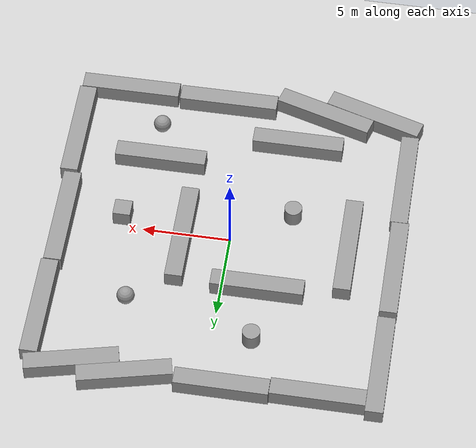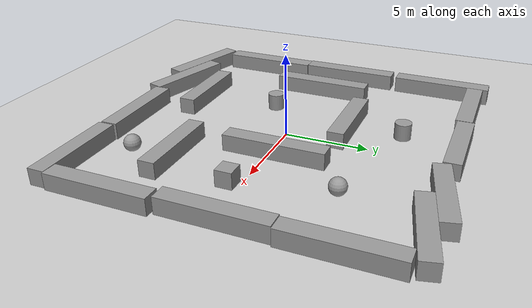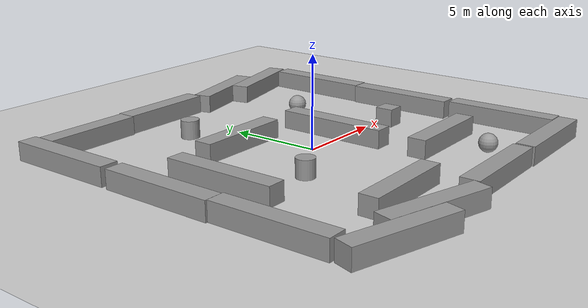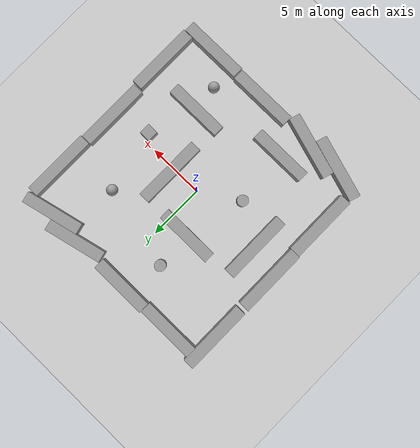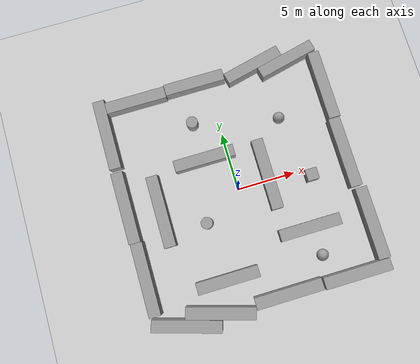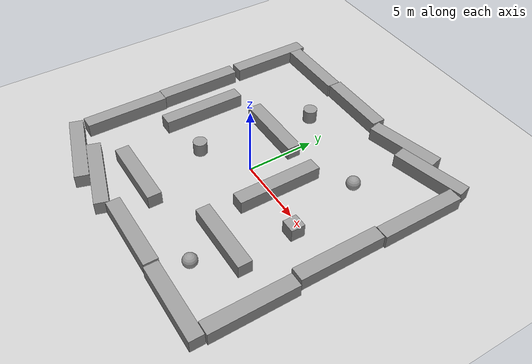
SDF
<sdf version="1.6">
 <world name="default">
  <light name="sun" type="directional">
   <pose>0 0 10 0 -0 0</pose>
   <diffuse>0.8 0.8 0.8 1</diffuse>
   <specular>0.2 0.2 0.2 1</specular>
   <attenuation>
    <range>1000</range>
    <constant>0.9</constant>
    <linear>0.01</linear>
    <quadratic>0.001</quadratic>
   </attenuation>
   <direction>-0.5 0.1 -0.9</direction>
  </light>
  <model name="ground_plane">
   <static>1</static>
   <link name="link">
    <collision name="collision">
     <geometry><plane><normal>0 0 1</normal><size>100 100</size></plane></geometry>
     <surface><friction><ode><mu>100</mu><mu2>50</mu2></ode></friction></surface>
    </collision>
    <visual name="visual">
     <cast_shadows>0</cast_shadows>
     <geometry><plane><normal>0 0 1</normal><size>100 100</size></plane></geometry>
     <material>
      <script><uri>file://media/materials/scripts/gazebo.material</uri><name>Gazebo/Grey</name></script>
     </material>
    </visual>
   </link>
  </model>
  <gravity>0 0 -9.8</gravity>
  <magnetic_field>6e-06 2.3e-05 -4.2e-05</magnetic_field>
  <atmosphere type="adiabatic"/>
  <physics name="default_physics" default="0" type="ode">
   <max_step_size>0.001</max_step_size>
   <real_time_factor>1</real_time_factor>
   <real_time_update_rate>1000</real_time_update_rate>
  </physics>
  <scene><ambient>0.4 0.4 0.4 1</ambient><background>0.7 0.7 0.7 1</background><shadows>1</shadows></scene>
  <spherical_coordinates>
   <surface_model>EARTH_WGS84</surface_model>
   <latitude_deg>0</latitude_deg>
   <longitude_deg>0</longitude_deg>
   <elevation>0</elevation>
   <heading_deg>0</heading_deg>
  </spherical_coordinates>
  <model name="unit_box">
   <pose>-2.04113 3.23235 0.5 1e-06 -0 6.7e-05</pose>
   <link name="link">
    <inertial>
     <mass>1</mass>
     <inertia>
      <ixx>0.166667</ixx>
      <ixy>0</ixy>
      <ixz>0</ixz>
      <iyy>0.166667</iyy>
      <iyz>0</iyz>
      <izz>0.166667</izz>
     </inertia>
    </inertial>
    <collision name="collision"><geometry><box><size>5.23122 1 1</size></box></geometry></collision>
    <visual name="visual">
     <geometry><box><size>5.23122 1 1</size></box></geometry>
     <material>
      <script><name>Gazebo/Grey</name><uri>file://media/materials/scripts/gazebo.material</uri></script>
     </material>
    </visual>
   </link>
  </model>
  <model name="unit_box_0">
   <pose>2.65874 0.450974 0.494749 0.001718 -0 -0.000135</pose>
   <link name="link">
    <inertial>
     <mass>1</mass>
     <inertia>
      <ixx>0.166667</ixx>
      <ixy>0</ixy>
      <ixz>0</ixz>
      <iyy>0.166667</iyy>
      <iyz>0</iyz>
      <izz>0.166667</izz>
     </inertia>
    </inertial>
    <collision name="collision"><geometry><box><size>1 6.11687 1</size></box></geometry></collision>
    <visual name="visual">
     <geometry><box><size>1 6.11687 1</size></box></geometry>
     <material>
      <script><name>Gazebo/Grey</name><uri>file://media/materials/scripts/gazebo.material</uri></script>
     </material>
    </visual>
   </link>
  </model>
  <model name="unit_box_0_clone">
   <pose>-6.71949 -0.050094 0.494749 -0.001718 0 -0.000135</pose>
   <link name="link">
    <inertial>
     <mass>1</mass>
     <inertia>
      <ixx>0.166667</ixx>
      <ixy>0</ixy>
      <ixz>0</ixz>
      <iyy>0.166667</iyy>
      <iyz>0</iyz>
      <izz>0.166667</izz>
     </inertia>
    </inertial>
    <collision name="collision"><geometry><box><size>1 6.11688 1</size></box></geometry></collision>
    <visual name="visual">
     <geometry><box><size>1 6.11688 1</size></box></geometry>
     <material>
      <script><name>Gazebo/Grey</name><uri>file://media/materials/scripts/gazebo.material</uri></script>
     </material>
    </visual>
   </link>
  </model>
  <model name="unit_box_clone">
   <pose>4.75092 -4.82907 0.497393 0 -0.000997 -2.7e-05</pose>
   <link name="link">
    <inertial>
     <mass>1</mass>
     <inertia>
      <ixx>0.166667</ixx>
      <ixy>0</ixy>
      <ixz>0</ixz>
      <iyy>0.166667</iyy>
      <iyz>0</iyz>
      <izz>0.166667</izz>
     </inertia>
    </inertial>
    <collision name="collision"><geometry><box><size>5.23122 1 1</size></box></geometry></collision>
    <visual name="visual">
     <geometry><box><size>5.23122 1 1</size></box></geometry>
     <material>
      <script><name>Gazebo/Grey</name><uri>file://media/materials/scripts/gazebo.material</uri></script>
     </material>
    </visual>
   </link>
  </model>
  <model name="unit_box_clone_0">
   <pose>-2.94831 -6.98087 0.497393 0 -0.000997 -2.7e-05</pose>
   <link name="link">
    <inertial>
     <mass>1</mass>
     <inertia>
      <ixx>0.166667</ixx>
      <ixy>0</ixy>
      <ixz>0</ixz>
      <iyy>0.166667</iyy>
      <iyz>0</iyz>
      <izz>0.166667</izz>
     </inertia>
    </inertial>
    <collision name="collision"><geometry><box><size>5.23122 1 1</size></box></geometry></collision>
    <visual name="visual">
     <geometry><box><size>5.23122 1 1</size></box></geometry>
     <material>
      <script><name>Gazebo/Grey</name><uri>file://media/materials/scripts/gazebo.material</uri></script>
     </material>
    </visual>
   </link>
  </model>
  <model name="unit_box_clone_1">
   <pose>7.3075 -9.52002 0.496165 -0 0.001346 -7.1e-05</pose>
   <link name="link">
    <inertial>
     <mass>1</mass>
     <inertia>
      <ixx>0.166667</ixx>
      <ixy>0</ixy>
      <ixz>0</ixz>
      <iyy>0.166667</iyy>
      <iyz>0</iyz>
      <izz>0.166667</izz>
     </inertia>
    </inertial>
    <collision name="collision"><geometry><box><size>5.69951 1 1</size></box></geometry></collision>
    <visual name="visual">
     <geometry><box><size>5.69951 1 1</size></box></geometry>
     <material>
      <script><name>Gazebo/Grey</name><uri>file://media/materials/scripts/gazebo.material</uri></script>
     </material>
    </visual>
   </link>
  </model>
  <model name="unit_box_clone_1_clone">
   <pose>1.48768 -9.44384 0.496165 0 0.001346 7.6e-05</pose>
   <link name="link">
    <inertial>
     <mass>1</mass>
     <inertia>
      <ixx>0.166667</ixx>
      <ixy>0</ixy>
      <ixz>0</ixz>
      <iyy>0.166667</iyy>
      <iyz>0</iyz>
      <izz>0.166667</izz>
     </inertia>
    </inertial>
    <collision name="collision"><geometry><box><size>5.69949 1 1</size></box></geometry></collision>
    <visual name="visual">
     <geometry><box><size>5.69949 1 1</size></box></geometry>
     <material>
      <script><name>Gazebo/Grey</name><uri>file://media/materials/scripts/gazebo.material</uri></script>
     </material>
    </visual>
   </link>
  </model>
  <model name="unit_box_clone_1_clone_0">
   <pose>-4.23588 -9.33492 0.499979 0 -7e-06 -0.289893</pose>
   <link name="link">
    <inertial>
     <mass>1</mass>
     <inertia>
      <ixx>0.166667</ixx>
      <ixy>0</ixy>
      <ixz>0</ixz>
      <iyy>0.166667</iyy>
      <iyz>0</iyz>
      <izz>0.166667</izz>
     </inertia>
    </inertial>
    <collision name="collision"><geometry><box><size>5.69949 1 1</size></box></geometry></collision>
    <visual name="visual">
     <geometry><box><size>5.69949 1 1</size></box></geometry>
     <material>
      <script><name>Gazebo/Grey</name><uri>file://media/materials/scripts/gazebo.material</uri></script>
     </material>
    </visual>
   </link>
  </model>
  <model name="unit_box_clone_1_clone_1">
   <pose>-7.13158 -9.51555 0.499987 2e-06 -5e-06 -0.296344</pose>
   <link name="link">
    <inertial>
     <mass>1</mass>
     <inertia>
      <ixx>0.166667</ixx>
      <ixy>0</ixy>
      <ixz>0</ixz>
      <iyy>0.166667</iyy>
      <iyz>0</iyz>
      <izz>0.166667</izz>
     </inertia>
    </inertial>
    <collision name="collision"><geometry><box><size>5.69949 1 1</size></box></geometry></collision>
    <visual name="visual">
     <geometry><box><size>5.69949 1 1</size></box></geometry>
     <material>
      <script><name>Gazebo/Grey</name><uri>file://media/materials/scripts/gazebo.material</uri></script>
     </material>
    </visual>
   </link>
  </model>
  <model name="unit_box_0_clone_clone">
   <pose>-9.34697 -5.04524 0.494749 -0.001718 -0 0.000135</pose>
   <link name="link">
    <inertial>
     <mass>1</mass>
     <inertia>
      <ixx>0.166667</ixx>
      <ixy>0</ixy>
      <ixz>0</ixz>
      <iyy>0.166667</iyy>
      <iyz>0</iyz>
      <izz>0.166667</izz>
     </inertia>
    </inertial>
    <collision name="collision"><geometry><box><size>1 6.11688 1</size></box></geometry></collision>
    <visual name="visual">
     <geometry><box><size>1 6.11688 1</size></box></geometry>
     <material>
      <script><name>Gazebo/Grey</name><uri>file://media/materials/scripts/gazebo.material</uri></script>
     </material>
    </visual>
   </link>
  </model>
  <model name="unit_box_0_clone_clone_0">
   <pose>-9.4407 1.07916 0.494749 0.001718 0 0.000135</pose>
   <link name="link">
    <inertial>
     <mass>1</mass>
     <inertia>
      <ixx>0.166667</ixx>
      <ixy>0</ixy>
      <ixz>0</ixz>
      <iyy>0.166667</iyy>
      <iyz>0</iyz>
      <izz>0.166667</izz>
     </inertia>
    </inertial>
    <collision name="collision"><geometry><box><size>1 6.11688 1</size></box></geometry></collision>
    <visual name="visual">
     <geometry><box><size>1 6.11688 1</size></box></geometry>
     <material>
      <script><name>Gazebo/Grey</name><uri>file://media/materials/scripts/gazebo.material</uri></script>
     </material>
    </visual>
   </link>
  </model>
  <model name="unit_box_0_clone_clone_1">
   <pose>-9.42017 7.54255 0.494749 -0.001718 -0 0.000135</pose>
   <link name="link">
    <inertial>
     <mass>1</mass>
     <inertia>
      <ixx>0.166667</ixx>
      <ixy>0</ixy>
      <ixz>0</ixz>
      <iyy>0.166667</iyy>
      <iyz>0</iyz>
      <izz>0.166667</izz>
     </inertia>
    </inertial>
    <collision name="collision"><geometry><box><size>1 6.11688 1</size></box></geometry></collision>
    <visual name="visual">
     <geometry><box><size>1 6.11688 1</size></box></geometry>
     <material>
      <script><name>Gazebo/Grey</name><uri>file://media/materials/scripts/gazebo.material</uri></script>
     </material>
    </visual>
   </link>
  </model>
  <model name="unit_box_clone_2">
   <pose>-6.30401 9.78097 0.5 1e-06 -0 -0.001022</pose>
   <link name="link">
    <inertial>
     <mass>1</mass>
     <inertia>
      <ixx>0.166667</ixx>
      <ixy>0</ixy>
      <ixz>0</ixz>
      <iyy>0.166667</iyy>
      <iyz>0</iyz>
      <izz>0.166667</izz>
     </inertia>
    </inertial>
    <collision name="collision"><geometry><box><size>5.23122 1 1</size></box></geometry></collision>
    <visual name="visual">
     <geometry><box><size>5.23122 1 1</size></box></geometry>
     <material>
      <script><name>Gazebo/Grey</name><uri>file://media/materials/scripts/gazebo.material</uri></script>
     </material>
    </visual>
   </link>
  </model>
  <model name="unit_box_clone_3">
   <pose>-1.05502 9.89958 0.497393 0 -0.000997 -2.2e-05</pose>
   <link name="link">
    <inertial>
     <mass>1</mass>
     <inertia>
      <ixx>0.166667</ixx>
      <ixy>0</ixy>
      <ixz>0</ixz>
      <iyy>0.166667</iyy>
      <iyz>0</iyz>
      <izz>0.166667</izz>
     </inertia>
    </inertial>
    <collision name="collision"><geometry><box><size>5.23122 1 1</size></box></geometry></collision>
    <visual name="visual">
     <geometry><box><size>5.23122 1 1</size></box></geometry>
     <material>
      <script><name>Gazebo/Grey</name><uri>file://media/materials/scripts/gazebo.material</uri></script>
     </material>
    </visual>
   </link>
  </model>
  <model name="unit_box_clone_4">
   <pose>4.26556 9.9947 0.499853 0 -0 0.232963</pose>
   <link name="link">
    <inertial>
     <mass>1</mass>
     <inertia>
      <ixx>0.166667</ixx>
      <ixy>0</ixy>
      <ixz>0</ixz>
      <iyy>0.166667</iyy>
      <iyz>0</iyz>
      <izz>0.166667</izz>
     </inertia>
    </inertial>
    <collision name="collision"><geometry><box><size>5.23122 1 1</size></box></geometry></collision>
    <visual name="visual">
     <geometry><box><size>5.23122 1 1</size></box></geometry>
     <material>
      <script><name>Gazebo/Grey</name><uri>file://media/materials/scripts/gazebo.material</uri></script>
     </material>
    </visual>
   </link>
  </model>
  <model name="unit_box_clone_5">
   <pose>7.23973 9.67263 0.499983 0 1e-06 0.232977</pose>
   <link name="link">
    <inertial>
     <mass>1</mass>
     <inertia>
      <ixx>0.166667</ixx>
      <ixy>0</ixy>
      <ixz>0</ixz>
      <iyy>0.166667</iyy>
      <iyz>0</iyz>
      <izz>0.166667</izz>
     </inertia>
    </inertial>
    <collision name="collision"><geometry><box><size>5.23122 1 1</size></box></geometry></collision>
    <visual name="visual">
     <geometry><box><size>5.23122 1 1</size></box></geometry>
     <material>
      <script><name>Gazebo/Grey</name><uri>file://media/materials/scripts/gazebo.material</uri></script>
     </material>
    </visual>
   </link>
  </model>
  <model name="unit_box_0_clone_0">
   <pose>9.63426 6.53702 0.494749 0.001718 0 0.000135</pose>
   <link name="link">
    <inertial>
     <mass>1</mass>
     <inertia>
      <ixx>0.166667</ixx>
      <ixy>0</ixy>
      <ixz>0</ixz>
      <iyy>0.166667</iyy>
      <iyz>0</iyz>
      <izz>0.166667</izz>
     </inertia>
    </inertial>
    <collision name="collision"><geometry><box><size>1 6.11688 1</size></box></geometry></collision>
    <visual name="visual">
     <geometry><box><size>1 6.11688 1</size></box></geometry>
     <material>
      <script><name>Gazebo/Grey</name><uri>file://media/materials/scripts/gazebo.material</uri></script>
     </material>
    </visual>
   </link>
  </model>
  <model name="unit_box_0_clone_1">
   <pose>9.52187 0.370972 0.494749 -0.001718 0 -0.000135</pose>
   <link name="link">
    <inertial>
     <mass>1</mass>
     <inertia>
      <ixx>0.166667</ixx>
      <ixy>0</ixy>
      <ixz>0</ixz>
      <iyy>0.166667</iyy>
      <iyz>0</iyz>
      <izz>0.166667</izz>
     </inertia>
    </inertial>
    <collision name="collision"><geometry><box><size>1 6.11688 1</size></box></geometry></collision>
    <visual name="visual">
     <geometry><box><size>1 6.11688 1</size></box></geometry>
     <material>
      <script><name>Gazebo/Grey</name><uri>file://media/materials/scripts/gazebo.material</uri></script>
     </material>
    </visual>
   </link>
  </model>
  <model name="unit_box_0_clone_2">
   <pose>9.78858 -5.92066 0.494749 -0.001718 -0 0.000135</pose>
   <link name="link">
    <inertial>
     <mass>1</mass>
     <inertia>
      <ixx>0.166667</ixx>
      <ixy>0</ixy>
      <ixz>0</ixz>
      <iyy>0.166667</iyy>
      <iyz>0</iyz>
      <izz>0.166667</izz>
     </inertia>
    </inertial>
    <collision name="collision"><geometry><box><size>1 6.11688 1</size></box></geometry></collision>
    <visual name="visual">
     <geometry><box><size>1 6.11688 1</size></box></geometry>
     <material>
      <script><name>Gazebo/Grey</name><uri>file://media/materials/scripts/gazebo.material</uri></script>
     </material>
    </visual>
   </link>
  </model>
  <model name="unit_sphere">
   <pose>5.09842 4.90147 0.5 0 -0 0</pose>
   <link name="link">
    <inertial>
     <mass>1</mass>
     <inertia><ixx>0.1</ixx><ixy>0</ixy><ixz>0</ixz><iyy>0.1</iyy><iyz>0</iyz><izz>0.1</izz></inertia>
    </inertial>
    <collision name="collision"><geometry><sphere><radius>0.5</radius></sphere></geometry></collision>
    <visual name="visual">
     <geometry><sphere><radius>0.5</radius></sphere></geometry>
     <material>
      <script><name>Gazebo/Grey</name><uri>file://media/materials/scripts/gazebo.material</uri></script>
     </material>
    </visual>
   </link>
  </model>
  <model name="unit_cylinder">
   <pose>-2.18825 6.52355 0.499993 -3e-06 -3e-06 0</pose>
   <link name="link">
    <inertial>
     <mass>1</mass>
     <inertia><ixx>0.145833</ixx><ixy>0</ixy><ixz>0</ixz><iyy>0.145833</iyy><iyz>0</iyz><izz>0.125</izz></inertia>
    </inertial>
    <collision name="collision">
     <geometry><cylinder><radius>0.5</radius><length>1</length></cylinder></geometry>
    </collision>
    <visual name="visual">
     <geometry><cylinder><radius>0.5</radius><length>1</length></cylinder></geometry>
     <material>
      <script><name>Gazebo/Grey</name><uri>file://media/materials/scripts/gazebo.material</uri></script>
     </material>
    </visual>
   </link>
  </model>
  <model name="unit_cylinder_0">
   <pose>-3.32442 -2.06743 0.499997 3e-06 4e-06 -0</pose>
   <link name="link">
    <inertial>
     <mass>1</mass>
     <inertia><ixx>0.145833</ixx><ixy>0</ixy><ixz>0</ixz><iyy>0.145833</iyy><iyz>0</iyz><izz>0.125</izz></inertia>
    </inertial>
    <collision name="collision">
     <geometry><cylinder><radius>0.5</radius><length>1</length></cylinder></geometry>
    </collision>
    <visual name="visual">
     <geometry><cylinder><radius>0.5</radius><length>1</length></cylinder></geometry>
     <material>
      <script><name>Gazebo/Grey</name><uri>file://media/materials/scripts/gazebo.material</uri></script>
     </material>
    </visual>
   </link>
  </model>
  <model name="unit_sphere_0">
   <pose>5.09685 -7.29983 0.5 0 -0 0</pose>
   <link name="link">
    <inertial>
     <mass>1</mass>
     <inertia><ixx>0.1</ixx><ixy>0</ixy><ixz>0</ixz><iyy>0.1</iyy><iyz>0</iyz><izz>0.1</izz></inertia>
    </inertial>
    <collision name="collision"><geometry><sphere><radius>0.5</radius></sphere></geometry></collision>
    <visual name="visual">
     <geometry><sphere><radius>0.5</radius></sphere></geometry>
     <material>
      <script><name>Gazebo/Grey</name><uri>file://media/materials/scripts/gazebo.material</uri></script>
     </material>
    </visual>
   </link>
  </model>
  <model name="unit_box_1">
   <pose>6.24947 -0.663826 0.5 0 -0 0</pose>
   <link name="link">
    <inertial>
     <mass>1</mass>
     <inertia>
      <ixx>0.166667</ixx>
      <ixy>0</ixy>
      <ixz>0</ixz>
      <iyy>0.166667</iyy>
      <iyz>0</iyz>
      <izz>0.166667</izz>
     </inertia>
    </inertial>
    <collision name="collision"><geometry><box><size>1 1 1</size></box></geometry></collision>
    <visual name="visual">
     <geometry><box><size>1 1 1</size></box></geometry>
     <material>
      <script><name>Gazebo/Grey</name><uri>file://media/materials/scripts/gazebo.material</uri></script>
     </material>
    </visual>
   </link>
  </model>
 </world>
</sdf>
